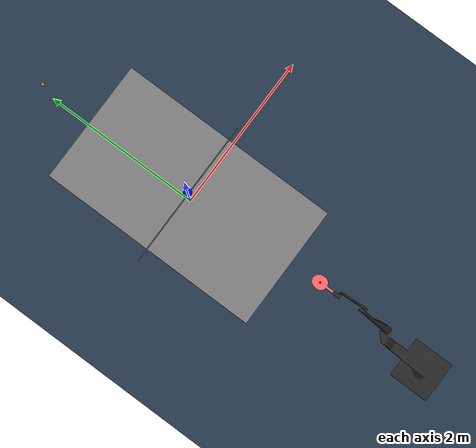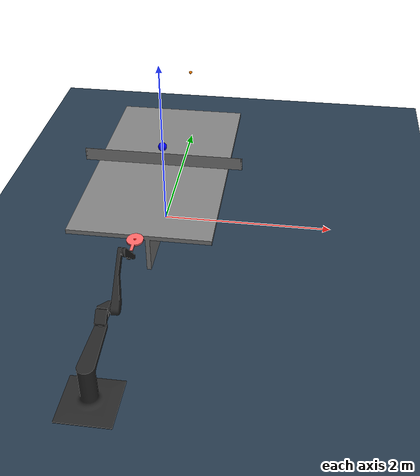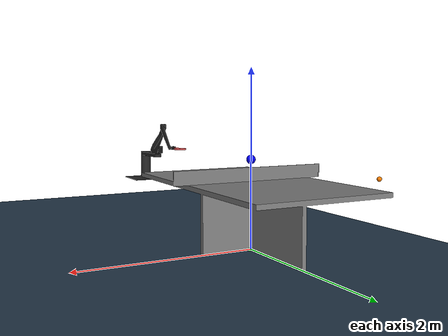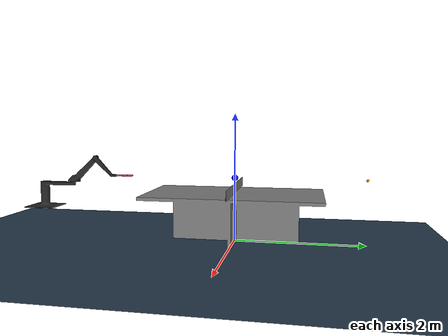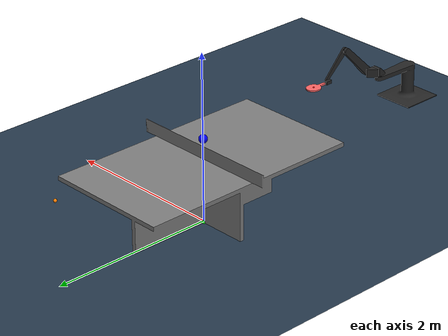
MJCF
<mujoco>
  <compiler meshdir="assets" texturedir="assets"/>
  <statistic extent="1.5" meansize=".05"/>

  <default>
    <pair solref="-35000 -15.75" solimp="0.95 0.99 0.001 0.5 2"/>
  </default>

  <option timestep="0.001" jacobian="auto" tolerance="1e-8" gravity="0 0 -9.81"/>

  <visual>
    <global offwidth="1920" offheight="1080" azimuth="90" elevation="-45"/>
    <rgba haze="0.15 0.25 0.35 1"/>
    <quality shadowsize="4096"/>
    <map stiffness="700" shadowscale="0.5" fogstart="10" fogend="15" zfar="40" haze="0.3"/>
  </visual>

  <asset>
    <texture type="skybox" builtin="gradient" rgb1="0.3 0.5 0.7" rgb2="0 0 0" width="512" height="512"/>
    <texture name="texplane" type="2d" builtin="checker" rgb1=".2 .3 .4" rgb2=".1 0.15 0.2"
      width="512" height="512" mark="cross" markrgb=".8 .8 .8"/>

    <mesh file="table.obj"/>

    <mesh file="arm-base.obj"/>
    <mesh file="rotator.obj"/>
    <mesh file="arm1.obj"/>
    <mesh file="arm2.obj"/>
    <mesh file="paddle-rotator.obj"/>
    <mesh file="paddle.obj"/>

    <material name="matplane" reflectance="0.3" texture="texplane" texrepeat="1 1" texuniform="true"/>
  </asset>

  <worldbody>
    <!-- Lights -->
    <light directional="true" diffuse=".6 .6 .6" specular="0.2 0.2 0.2" pos="0 0 4" dir="0 0 -1"/>

    <!-- Cameras -->
    <camera name="top_down" pos="0 0 10" euler="0 0 90"/>
    <camera name="render_cam" pos="-4.100 -2.081 1.897" xyaxes="0.281 -0.960 -0.000 0.217 0.064 0.974"/>

    <!-- Ground -->
    <geom name="ground" type="plane" size="0 0 1" pos="0 0 0" quat="1 0 0 0" material="matplane" condim="1"/>

    <!-- Table -->
    <body name="table" pos="0 0 0" euler="0 0 0">
      <geom type="mesh" mesh="table" pos="0 0 0.01" euler="0 0 0" contype="0" conaffinity="0"/>

      <!-- Add geoms for collision detection -->
      <geom name="table_collider_v" type="box" size="0.9225 0.0025 0.07625" pos="0 0 0.83625" rgba="0 0 0 0"/>
      <geom name="table_collider_h" type="box" size="0.7625 1.37 0.025" pos="0 0 0.735" rgba="0 0 0 0"/>
    </body>

    <body name="ball" pos="0 2 1" euler="0 0 0">
      <geom name="ball_geom" type="sphere" size="0.02" rgba="1 0.5 0 1" mass="0.00167"/>
      <joint type="free" name="ball_free" damping="0.0"/>
    </body>

    <!-- Target Pose Site -->
    <site name="target_pose" size="0.05" rgba="0 1 0 1"/>

    <!-- Target Position Site -->
    <site name="target" pos="0 0 1" size="0.05" rgba="0 0 1 1"/>

    <!-- Arm Base -->
    <body name="base" pos="0 -3.255 0.45" euler="0 0 0">
      <joint type="slide" axis="0 1 0" name="base_x" range="-1.8 1.8" damping="2"/>
      <joint type="slide" axis="1 0 0" name="base_y" range="-1.8 1.8" damping="2"/>
      <geom type="mesh" mesh="arm-base" pos="0 0.95 0.42" euler="0 0 180" rgba=".15 .15 .15 1" mass="12.5" contype="0" conaffinity="0"/>

      <!-- Camera -->
      <camera name="follow" pos="0 -2.5 1.5" euler="80 0 0" mode="track"/>

      <!-- Rotator 1 -->
      <body name="rotator1" pos="0 0.5 0.425" euler="0 0 0">
        <joint type="hinge" axis="0 0 1" name="rotator1" damping="0.04"/>
        <geom type="mesh" mesh="rotator" pos="0 0.45 0" euler="0 0 180" rgba=".15 .15 .15 1" mass="0.250" contype="0" conaffinity="0"/>

        <!-- Rotator 2 -->
        <body name="rotator2" pos="0 0.055 0.06" euler="-90 0 90">
          <joint type="hinge" axis="0 0 1" name="rotator2" damping="0.04"/>
          <geom type="mesh" mesh="rotator" pos="0 -0.45 0" euler="0 0 0" rgba=".15 .15 .15 1" mass="0.250" contype="0" conaffinity="0"/>

          <!-- Arm 1 -->
          <body name="arm1" pos="0 -0.050 0.061" euler="90 0 45">
            <joint type="hinge" axis="0 0 1" name="arm1" damping="0.04"/>
            <geom type="mesh" mesh="arm1" pos="0 0.335 -0.11" euler="0 0 180" rgba=".15 .15 .15 1" mass="0.550" contype="0" conaffinity="0"/>

            <!-- Arm 2 -->
            <body name="arm2" pos="0 0.5 0.045" euler="0 0 -90">
              <joint type="hinge" axis="0 0 1" name="arm2" damping="0.04"/>
              <geom type="mesh" mesh="arm2" pos="0 -0.164 -0.155" euler="0 0 180" rgba=".15 .15 .15 1" mass="0.450" contype="0" conaffinity="0"/>

              <!-- Paddle Rotator -->
              <body name="paddle_rotator" pos="0 0.4 0.015" euler="0 180 -45">
                <joint type="hinge" axis="0 0 1" name="paddle_rotator" damping="0.01"/>
                <geom type="mesh" mesh="paddle-rotator" pos="0 -0.565 0.174" euler="0 0 0" rgba=".15 .15 .15 1" mass="0.1" contype="0" conaffinity="0"/>

                <!-- Paddle -->
                <body name="paddle" pos="0 0.065 0.035" euler="-90 0 -90">
                  <joint type="hinge" axis="0 0 1" name="paddle" damping="0.01"/>
                  <geom name="paddle" type="mesh" mesh="paddle" pos="-0.094 0 0" euler="90 0 0" rgba="1 .4 .4 1" mass="0.150"/>
                  <site name="paddle_site" pos="0 0 0.1855" euler="0 180 0" size="0.015" rgba="1 0 0 1"/>
                </body>
              </body>
            </body>
          </body>
        </body>
      </body>
    </body>
  </worldbody>

  <contact>
    <pair geom1="ball_geom" geom2="table_collider_v"/>
    <pair geom1="ball_geom" geom2="table_collider_h"/>
    <pair geom1="ball_geom" geom2="ground"/>
    <pair geom1="ball_geom" geom2="paddle"/>
  </contact>

  <actuator>
    <motor name="base_x" joint="base_x"/>
    <motor name="base_y" joint="base_y"/>
    <motor name="rotator1" joint="rotator1"/>
    <motor name="rotator2" joint="rotator2"/>
    <motor name="arm1" joint="arm1"/>
    <motor name="arm2" joint="arm2"/>
    <motor name="paddle_rotator" joint="paddle_rotator"/>
    <motor name="paddle" joint="paddle"/>
  </actuator>
</mujoco>
